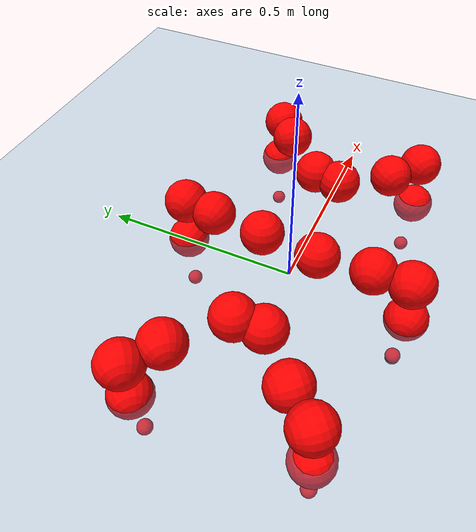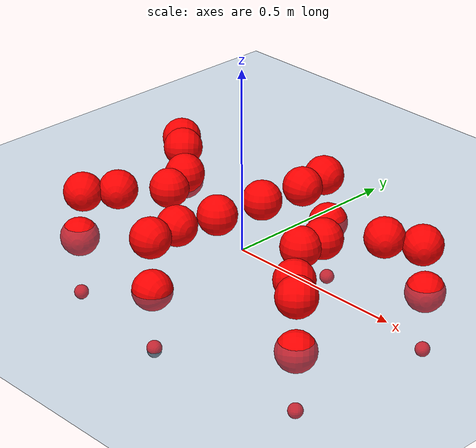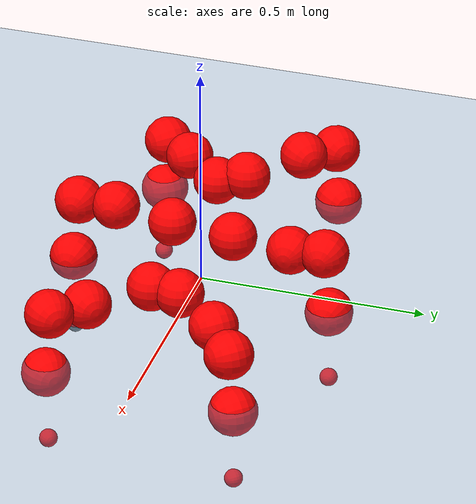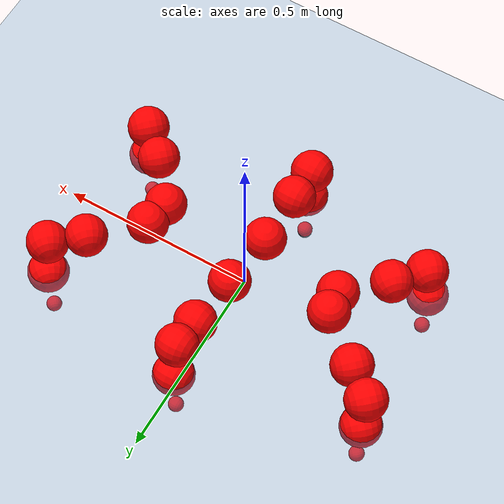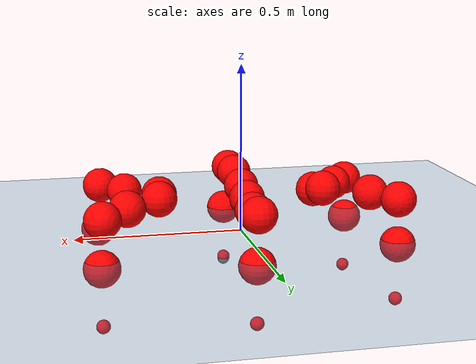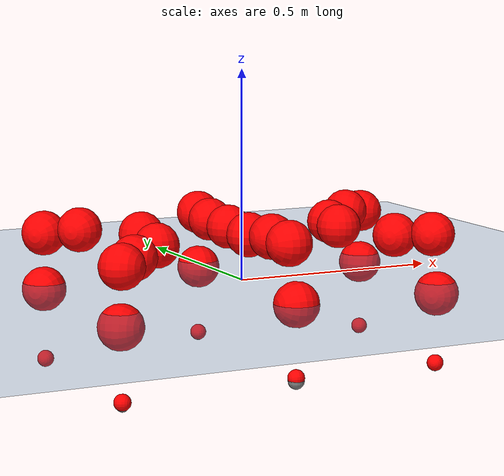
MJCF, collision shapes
<mujoco model="Golem">
  <compiler angle="radian" assetdir="assets" balanceinertia="true" inertiafromgeom="false"/>

  <option timestep="0.005" density="1.2" viscosity="2e-05"/>

  <size nkey="1"/>

  <visual>
    <quality shadowsize="8192"/>
    <map shadowclip="0.5"/>
  </visual>

  <default>
    <default class="/">
      <joint armature="0.01" damping="0.01" frictionloss="0.01"/>
      <geom contype="0" conaffinity="0" group="1" solref="-1000 -80"/>
      <site size="0.01 0.005 0.005" group="5"/>
      <general forcelimited="true" biastype="affine" gainprm="25" biasprm="0 -25 -0.5"/>
      <default class="visual">
        <geom type="mesh" group="2"/>
      </default>
      <default class="collision">
        <geom group="3"/>
      </default>
      <default class="foot">
        <geom size="0.01 0 0" condim="6" group="4" priority="1" solimp="0.015 1 0.01"/>
      </default>
      <default class="reward_collision_sphere">
        <geom group="5" rgba="1 0 0 1"/>
      </default>
    </default>
  </default>

  <asset>
    <texture type="skybox" colorspace="auto" name="//unnamed_texture_0" builtin="gradient" rgb1="0.95 0.95 0.95" rgb2="0.95 0.95 0.95" width="100" height="600"/>
    <texture type="2d" colorspace="auto" name="texplane" builtin="checker" rgb1="0.345 0.575 0.748" rgb2="0.345 0.575 0.748" markrgb="1 1 1" width="512" height="512"/>
    <material name="MatPlane" class="/" texture="texplane" texuniform="true" texrepeat="2 2" specular="0.9"/>
    <mesh name="body" class="/" file="body.stl" scale="0.001 0.001 0.001"/>
    <mesh name="coxa" class="/" file="coxa.stl" scale="0.001 0.001 0.001"/>
    <mesh name="femur" class="/" file="femur.stl" scale="0.001 0.001 0.001"/>
    <mesh name="tibia" class="/" file="tibia.stl" scale="0.001 0.001 0.001"/>
    <mesh name="tarsus" class="/" file="tarsus.stl" scale="0.001 0.001 0.001"/>
  </asset>

  <worldbody>
    <geom name="floor" class="/" size="100 100 0.125" type="plane" group="0" material="MatPlane"/>
    <light name="toplight_shadow" class="/" pos="0 0 5" dir="0.0990148 0.0990148 -0.990148" type="directional" ambient="0.04 0.04 0.04" diffuse="0.55 0.55 0.55" specular="0.12 0.12 0.12"/>
    <light name="toplight_fill" class="/" pos="0 0 5" dir="0.0990148 0.0990148 -0.990148" type="directional" castshadow="false" ambient="0.04 0.04 0.04" diffuse="0.3 0.3 0.3" specular="0.08 0.08 0.08"/>
    <body name="trunk" pos="-0.0026207 -0.000412824 0.0126516" quat="0.999994 -0.00120267 0.00048935 -0.00314872">
      <inertial pos="0.000178525 -0.0105264 0.0108739" quat="0.999533 -0.0148414 0.0209413 -0.0166039" mass="7.04836" diaginertia="0.0781505 0.00346973 0.0751987"/>
      <joint name="//unnamed_joint_0" type="free"/>
      <geom name="//unnamed_geom_1" class="/" pos="0 0 0.099959" quat="1 0 0 0" type="mesh" rgba="0.9 0.9 0.9 1" mesh="body"/>
      <site name="imu" class="/" pos="0.235539 0.00308575 0.0997869" size="0.0131424"/>
      <camera name="track" class="/" pos="0 -1.63991 0" quat="0.707107 0.707107 0 0" mode="trackcom"/>
      <camera name="ego_camera" class="/" pos="0.202918 0 0.156186" quat="-0.5 -0.5 0.5 0.5"/>
      <body name="coxa_RR" pos="-0.265521 -0.0730081 0.0939345" quat="0.381427 -0.00520882 -0.00478938 -0.924372">
        <inertial pos="0.0138338 0.00839352 -0.00102276" quat="0.998362 0.00631754 0.0226428 0.0521548" mass="0.417591" diaginertia="0.0920104 0.00363292 0.108684"/>
        <joint name="coxa_joint_RR" class="/" pos="0 0 0" axis="-0.00958286 -0.000624427 -0.999954" range="-3.00309 3.08596" armature="0.0159426" damping="0" frictionloss="0.00559037"/>
        <geom name="//unnamed_geom_2" class="/" type="mesh" rgba="0.2 0.2 0.2 1" mesh="coxa"/>
        <geom name="//unnamed_geom_3" class="reward_collision_sphere" size="0.0525696" pos="-0.0468273 0 0"/>
        <body name="femur_RR" pos="0.0870651 0.000357336 -0.0080944" quat="0.500002 -0.499998 0.499997 0.500003">
          <inertial pos="0.000493337 0.00588325 -0.0125383" quat="0.999997 0.000417319 -0.00241541 -0.000688614" mass="0.453105" diaginertia="0.0938041 0.00366583 0.108053"/>
          <joint name="femur_joint_RR" class="/" pos="0 0 0" axis="-0.0355908 0.0451872 -0.998344" stiffness="0.0175097" range="-3.22746 3.11701" armature="0.0174566" damping="0.0249029" frictionloss="0.0162391"/>
          <geom name="//unnamed_geom_4" class="/" type="mesh" rgba="0.9 0.9 0.9 1" mesh="femur"/>
          <geom name="//unnamed_geom_5" class="reward_collision_sphere" size="0.0525696"/>
          <body name="tibia_RR" pos="0.00518739 -0.0909671 0.00855223" quat="-1.21586e-05 1 -1.44137e-05 -9.09341e-05">
            <inertial pos="0.00661173 -0.011632 0.0126208" quat="0.998301 -0.0464634 0.0159851 0.0313156" mass="0.499839" diaginertia="0.115012 0.00405707 0.0976522"/>
            <joint name="tibia_joint_RR" class="/" pos="0 0 0" axis="0.000942653 0.007742 0.99997" range="-3.13202 3.33147" armature="0.0129179" damping="0" frictionloss="0.0119779"/>
            <geom name="//unnamed_geom_6" class="/" type="mesh" rgba="0.2 0.2 0.2 1" mesh="tibia"/>
            <geom name="//unnamed_geom_7" class="reward_collision_sphere" size="0.0525696"/>
            <body name="tarsus_RR" pos="0.131743 0.0120797 -0.00179193" quat="0.999982 0.00061711 0.00598674 0.000649805">
              <inertial pos="0.0886143 0.0135589 -0.00576751" quat="0.490498 0.50879 0.494454 0.506024" mass="0.47247" diaginertia="0.0909518 0.00288488 0.0838851"/>
              <joint name="tarsus_joint_RR" class="/" pos="0 0 0" axis="-0.0105294 -0.00123303 0.999944" stiffness="0.019929" range="-3.11718 3.15981" armature="0.0144671" damping="0.0548947" frictionloss="0.0146879"/>
              <geom name="//unnamed_geom_8" class="/" type="mesh" rgba="0.9 0.9 0.9 1" mesh="tarsus"/>
              <geom name="foot_1" class="foot" size="0.0142896" pos="0.174822 0 0" quat="0 -0.707107 0 0.707107"/>
              <geom name="//unnamed_geom_10" class="reward_collision_sphere" size="0.0525696"/>
              <geom name="//unnamed_geom_11" class="reward_collision_sphere" size="0.0197136" pos="0.167798 0 0"/>
              <site name="foot_1" class="foot" pos="0.174822 0 0" quat="0 -0.707107 0 0.707107" size="0.0131424"/>
            </body>
          </body>
        </body>
      </body>
      <body name="coxa_RM" pos="-0.0136506 -0.117889 0.107595" quat="0.706646 -0.000181167 -0.000877676 -0.707567">
        <inertial pos="-9.09053e-05 0.0083131 0.0145318" quat="0.999752 0.0211122 -0.00656408 0.00255523" mass="0.503659" diaginertia="0.117285 0.00477691 0.0969687"/>
        <joint name="coxa_joint_RM" class="/" pos="0 0 0" axis="-0.0105063 0.001583 -0.999944" range="-3.11666 3.1835" armature="0.0178546" damping="0" frictionloss="0.00753674"/>
        <geom name="//unnamed_geom_12" class="/" type="mesh" rgba="0.2 0.2 0.2 1" mesh="coxa"/>
        <geom name="//unnamed_geom_13" class="reward_collision_sphere" size="0.0525696" pos="-0.0468273 0 0"/>
        <body name="femur_RM" pos="0.0835889 -0.00508707 0.0147962" quat="0.495389 -0.500189 0.499084 0.505289">
          <inertial pos="0.00333404 0.00842405 0.000252712" quat="0.997864 0.0391453 -0.0483422 -0.0199282" mass="0.423676" diaginertia="0.0778811 0.0039596 0.0919417"/>
          <joint name="femur_joint_RM" class="/" pos="0 0 0" axis="0.021638 0.0123807 -0.999689" range="-2.91841 2.91655" armature="0.0036865" damping="0" frictionloss="0.0131938"/>
          <geom name="//unnamed_geom_14" class="/" type="mesh" rgba="0.9 0.9 0.9 1" mesh="femur"/>
          <geom name="//unnamed_geom_15" class="reward_collision_sphere" size="0.0525696"/>
          <body name="tibia_RM" pos="0.0016347 -0.0859547 -0.00120655" quat="0.000255389 1 -0.000452889 -0.000518256">
            <inertial pos="0.00509703 0.000224962 0.0122346" quat="0.99854 0.024734 0.00452784 -0.0478142" mass="0.596192" diaginertia="0.0981945 0.00424453 0.0897515"/>
            <joint name="tibia_joint_RM" class="/" pos="0 0 0" axis="0.0050941 -0.0124331 0.99991" range="-2.92393 3.36255" armature="0.0207663" damping="0.0452073" frictionloss="0.0165006"/>
            <geom name="//unnamed_geom_16" class="/" type="mesh" rgba="0.2 0.2 0.2 1" mesh="tibia"/>
            <geom name="//unnamed_geom_17" class="reward_collision_sphere" size="0.0525696"/>
            <body name="tarsus_RM" pos="0.137534 0.0108907 -0.0135737" quat="0.999995 0.00303156 0.00050103 8.98432e-05">
              <inertial pos="0.100145 -0.000131376 0.00643594" quat="0.496396 0.515985 0.460555 0.524632" mass="0.451386" diaginertia="0.0961814 0.00369294 0.0966817"/>
              <joint name="tarsus_joint_RM" class="/" pos="0 0 0" axis="-0.0117973 -0.0105097 0.999875" stiffness="0.0277044" range="-3.15535 2.84207" armature="0.0121718" damping="0.0725313" frictionloss="0.014992"/>
              <geom name="//unnamed_geom_18" class="/" type="mesh" rgba="0.9 0.9 0.9 1" mesh="tarsus"/>
              <geom name="foot_2" class="foot" size="0.0189467" pos="0.174822 0 0" quat="0 -0.707107 0 0.707107"/>
              <geom name="//unnamed_geom_20" class="reward_collision_sphere" size="0.0525696"/>
              <geom name="//unnamed_geom_21" class="reward_collision_sphere" size="0.0197136" pos="0.167798 0 0"/>
              <site name="foot_2" class="foot" pos="0.174822 0 0" quat="0 -0.707107 0 0.707107" size="0.0131424"/>
            </body>
          </body>
        </body>
      </body>
      <body name="coxa_RF" pos="0.277679 -0.0651929 0.104294" quat="0.924069 -0.00477523 0.00370721 -0.382178">
        <inertial pos="-0.0123723 0.0120418 0.00288013" quat="0.999854 -0.01247 -0.00869286 0.00775128" mass="0.473529" diaginertia="0.0805475 0.00381047 0.0938485"/>
        <joint name="coxa_joint_RF" class="/" pos="0 0 0" axis="-0.00399694 -0.0576993 -0.998326" stiffness="0.00915773" range="-3.12365 3.1823" armature="0.0126106" damping="0.0510711" frictionloss="0.0169533"/>
        <geom name="//unnamed_geom_22" class="/" type="mesh" rgba="0.2 0.2 0.2 1" mesh="coxa"/>
        <geom name="//unnamed_geom_23" class="reward_collision_sphere" size="0.0525696" pos="-0.0468273 0 0"/>
        <body name="femur_RF" pos="0.0962005 -0.0148783 -0.0111248" quat="0.504422 -0.494676 0.498484 0.502363">
          <inertial pos="-0.00209919 0.00104401 0.00642919" quat="0.999219 0.0264948 0.0267582 -0.0119859" mass="0.491827" diaginertia="0.0995229 0.00392565 0.101395"/>
          <joint name="femur_joint_RF" class="/" pos="0 0 0" axis="0.0185273 0.0133272 -0.99974" stiffness="0.0465023" range="-3.28103 2.98498" armature="0.0137832" damping="0" frictionloss="0.0130535"/>
          <geom name="//unnamed_geom_24" class="/" type="mesh" rgba="0.9 0.9 0.9 1" mesh="femur"/>
          <geom name="//unnamed_geom_25" class="reward_collision_sphere" size="0.0525696"/>
          <body name="tibia_RF" pos="-0.00655354 -0.0902589 0.00595498" quat="0.00112881 0.999999 0.000461046 -0.000695804">
            <inertial pos="0.00024552 0.0104961 0.000843345" quat="0.999533 0.0130219 0.0276016 -0.00134545" mass="0.492935" diaginertia="0.107634 0.00437351 0.0925313"/>
            <joint name="tibia_joint_RF" class="/" pos="0 0 0" axis="-0.00203481 0.000337798 0.999998" stiffness="0.0515784" range="-3.1542 3.35938" armature="0.0131356" damping="0.0845007" frictionloss="0.0133578"/>
            <geom name="//unnamed_geom_26" class="/" type="mesh" rgba="0.2 0.2 0.2 1" mesh="tibia"/>
            <geom name="//unnamed_geom_27" class="reward_collision_sphere" size="0.0525696"/>
            <body name="tarsus_RF" pos="0.141741 0.0121212 -0.000824381" quat="0.999989 0.00409259 0.0022587 -6.47238e-05">
              <inertial pos="0.0914008 -0.000502819 -0.00389207" quat="0.500003 0.500109 0.498335 0.501547" mass="0.467275" diaginertia="0.085135 0.00312456 0.0924064"/>
              <joint name="tarsus_joint_RF" class="/" pos="0 0 0" axis="0.00900425 -0.00969265 0.999912" range="-3.15279 3.20029" armature="0.0113462" damping="0.0187724" frictionloss="0.0144394"/>
              <geom name="//unnamed_geom_28" class="/" type="mesh" rgba="0.9 0.9 0.9 1" mesh="tarsus"/>
              <geom name="foot_3" class="foot" size="0.0130274" pos="0.174822 0 0" quat="0 -0.707107 0 0.707107"/>
              <geom name="//unnamed_geom_30" class="reward_collision_sphere" size="0.0525696"/>
              <geom name="//unnamed_geom_31" class="reward_collision_sphere" size="0.0197136" pos="0.167798 0 0"/>
              <site name="foot_3" class="foot" pos="0.174822 0 0" quat="0 -0.707107 0 0.707107" size="0.0131424"/>
            </body>
          </body>
        </body>
      </body>
      <body name="coxa_LR" pos="-0.276656 0.0580455 0.110873" quat="0.382683 7.50302e-06 7.20633e-06 0.92388">
        <inertial pos="-3.90489e-05 0.00539695 0.0100273" quat="0.998878 0.0318064 0.0348242 0.00439611" mass="0.571479" diaginertia="0.108299 0.0037723 0.111497"/>
        <joint name="coxa_joint_LR" class="/" pos="0 0 0" axis="-0.0453283 -0.0290946 -0.998548" range="-3.15511 3.18317" armature="0.00922435" damping="0.00626534" frictionloss="0.00641532"/>
        <geom name="//unnamed_geom_32" class="/" type="mesh" rgba="0.2 0.2 0.2 1" mesh="coxa"/>
        <geom name="//unnamed_geom_33" class="reward_collision_sphere" size="0.0525696" pos="-0.0468273 0 0"/>
        <body name="femur_LR" pos="0.102944 0.0133433 0.00468516" quat="0.496744 -0.499088 0.501322 0.502824">
          <inertial pos="0.000531842 0.00651881 0.0138465" quat="0.999339 -0.0194505 0.0115967 -0.0284395" mass="0.474651" diaginertia="0.106265 0.00430608 0.106271"/>
          <joint name="femur_joint_LR" class="/" pos="0 0 0" axis="-0.000474138 -0.0700046 0.997547" range="-3.11013 3.13088" armature="0.00761462" damping="0" frictionloss="0.0143571"/>
          <geom name="//unnamed_geom_34" class="/" type="mesh" rgba="0.9 0.9 0.9 1" mesh="femur"/>
          <geom name="//unnamed_geom_35" class="reward_collision_sphere" size="0.0525696"/>
          <body name="tibia_LR" pos="0.0102969 -0.0876006 0.00869457" quat="0.000205358 1 6.66012e-05 0.000427998">
            <inertial pos="0.00159912 -0.0116592 0.000210996" quat="0.999855 0.00201431 -0.0163083 0.00441189" mass="0.413439" diaginertia="0.0964229 0.003302 0.0718856"/>
            <joint name="tibia_joint_LR" class="/" pos="0 0 0" axis="-0.0637127 -0.0376596 -0.997257" stiffness="0.00361748" range="-3.35513 3.43783" armature="0.00357372" damping="0.0394065" frictionloss="0.00715015"/>
            <geom name="//unnamed_geom_36" class="/" type="mesh" rgba="0.2 0.2 0.2 1" mesh="tibia"/>
            <geom name="//unnamed_geom_37" class="reward_collision_sphere" size="0.0525696"/>
            <body name="tarsus_LR" pos="0.13427 0.0054163 0.00551556" quat="0.999998 0.00107962 -0.000646413 0.00147733">
              <inertial pos="0.0798802 0.00225662 0.0149618" quat="0.500051 0.499273 0.500731 0.499944" mass="0.448174" diaginertia="0.0817358 0.0038265 0.0900334"/>
              <joint name="tarsus_joint_LR" class="/" pos="0 0 0" axis="-0.0117271 -0.00201614 -0.999929" stiffness="0.0131008" range="-3.30604 3.29525" armature="0.0199588" damping="0" frictionloss="0.0134512"/>
              <geom name="//unnamed_geom_38" class="/" type="mesh" rgba="0.9 0.9 0.9 1" mesh="tarsus"/>
              <geom name="foot_4" class="foot" size="0.0125733" pos="0.174822 0 0" quat="0.707107 0 -0.707107 0"/>
              <geom name="//unnamed_geom_40" class="reward_collision_sphere" size="0.0525696"/>
              <geom name="//unnamed_geom_41" class="reward_collision_sphere" size="0.0197136" pos="0.167798 0 0"/>
              <site name="foot_4" class="foot" pos="0.174822 0 0" quat="0.707107 0 -0.707107 0" size="0.0131424"/>
            </body>
          </body>
        </body>
      </body>
      <body name="coxa_LM" pos="0.00108289 0.118215 0.10553" quat="0.707533 0.0017512 -2.28533e-06 0.706678">
        <inertial pos="-0.000603423 0.0123536 -0.0142334" quat="0.999408 -0.0152695 -0.019748 0.0236557" mass="0.424161" diaginertia="0.102866 0.00387798 0.0966449"/>
        <joint name="coxa_joint_LM" class="/" pos="0 0 0" axis="0.0484105 -0.0237371 -0.998545" stiffness="0.0157953" range="-3.12646 3.24303" armature="0.0225831" damping="0" frictionloss="0.0136202"/>
        <geom name="//unnamed_geom_42" class="/" type="mesh" rgba="0.2 0.2 0.2 1" mesh="coxa"/>
        <geom name="//unnamed_geom_43" class="reward_collision_sphere" size="0.0525696" pos="-0.0468273 0 0"/>
        <body name="femur_LM" pos="0.0869189 -0.0130384 -0.00198786" quat="0.499979 -0.499998 0.499944 0.500078">
          <inertial pos="0.0136411 -0.00830541 0.00862468" quat="0.999998 0.00199061 0.000377643 0.000216236" mass="0.485459" diaginertia="0.113685 0.00388138 0.102755"/>
          <joint name="femur_joint_LM" class="/" pos="0 0 0" axis="0.0115127 0.0626949 0.997966" range="-3.14188 3.11619" armature="0.0147174" damping="0.0291898" frictionloss="0.00628278"/>
          <geom name="//unnamed_geom_44" class="/" type="mesh" rgba="0.9 0.9 0.9 1" mesh="femur"/>
          <geom name="//unnamed_geom_45" class="reward_collision_sphere" size="0.0525696"/>
          <body name="tibia_LM" pos="-0.00735953 -0.0773285 -0.00270756" quat="0.000640238 0.999998 -0.0020783 -0.000334957">
            <inertial pos="-0.00318409 0.00026058 -0.00973481" quat="0.998633 -0.00221834 -0.0388031 -0.0349437" mass="0.542654" diaginertia="0.0906673 0.00383507 0.108466"/>
            <joint name="tibia_joint_LM" class="/" pos="0 0 0" axis="-0.0119698 -0.0143324 -0.999826" range="-3.16878 2.9017" armature="0.011941" damping="0.0342496" frictionloss="0.00895741"/>
            <geom name="//unnamed_geom_46" class="/" type="mesh" rgba="0.2 0.2 0.2 1" mesh="tibia"/>
            <geom name="//unnamed_geom_47" class="reward_collision_sphere" size="0.0525696"/>
            <body name="tarsus_LM" pos="0.141174 0.0120803 0.00674861" quat="1 -0.000167003 0.000475101 0.000346442">
              <inertial pos="0.0806013 0.00520938 0.00496083" quat="0.498418 0.501122 0.500588 0.499868" mass="0.450808" diaginertia="0.0891044 0.00357884 0.0821698"/>
              <joint name="tarsus_joint_LM" class="/" pos="0 0 0" axis="0.00490516 0.0115332 -0.999921" stiffness="0.0374841" range="-3.13169 3.13955" armature="0.0135406" damping="0.0492484" frictionloss="0.015814"/>
              <geom name="//unnamed_geom_48" class="/" type="mesh" rgba="0.9 0.9 0.9 1" mesh="tarsus"/>
              <geom name="foot_5" class="foot" size="0.0134015" pos="0.174822 0 0" quat="0.707107 0 -0.707107 0"/>
              <geom name="//unnamed_geom_50" class="reward_collision_sphere" size="0.0525696"/>
              <geom name="//unnamed_geom_51" class="reward_collision_sphere" size="0.0197136" pos="0.167798 0 0"/>
              <site name="foot_5" class="foot" pos="0.174822 0 0" quat="0.707107 0 -0.707107 0" size="0.0131424"/>
            </body>
          </body>
        </body>
      </body>
      <body name="coxa_LF" pos="0.287204 0.0678078 0.106452" quat="0.924199 0.000398058 0.000435153 0.38191">
        <inertial pos="-0.0100966 0.000112515 -0.00478879" quat="0.997963 -0.0573502 -0.0235652 0.0149834" mass="0.450617" diaginertia="0.0750901 0.0035116 0.0929473"/>
        <joint name="coxa_joint_LF" class="/" pos="0 0 0" axis="-0.00429737 0.0056853 -0.999975" range="-3.17816 3.37653" armature="0.0176446" damping="0.0244326" frictionloss="0.0136454"/>
        <geom name="//unnamed_geom_52" class="/" type="mesh" rgba="0.2 0.2 0.2 1" mesh="coxa"/>
        <geom name="//unnamed_geom_53" class="reward_collision_sphere" size="0.0525696" pos="-0.0468273 0 0"/>
        <body name="femur_LF" pos="0.105235 0.00234823 0.00494106" quat="0.500705 -0.500704 0.500673 0.497912">
          <inertial pos="0.0109105 -0.00968819 -0.00109107" quat="0.999561 0.000784118 0.00780102 0.0285808" mass="0.477872" diaginertia="0.104805 0.00365486 0.0910766"/>
          <joint name="femur_joint_LF" class="/" pos="0 0 0" axis="-0.0475558 0.0414394 0.998009" stiffness="0.02382" range="-2.89718 3.12768" armature="0.0129679" damping="0.0488393" frictionloss="0.0129084"/>
          <geom name="//unnamed_geom_54" class="/" type="mesh" rgba="0.9 0.9 0.9 1" mesh="femur"/>
          <geom name="//unnamed_geom_55" class="reward_collision_sphere" size="0.0525696"/>
          <body name="tibia_LF" pos="0.0131089 -0.0939118 -0.0121242" quat="-0.00282656 0.999989 -0.00315989 0.00215463">
            <inertial pos="0.0106304 6.3162e-05 0.002029" quat="0.997273 -0.032222 -0.0059125 0.0661377" mass="0.381231" diaginertia="0.103895 0.00366504 0.0995427"/>
            <joint name="tibia_joint_LF" class="/" pos="0 0 0" axis="0.0131274 -0.00280739 -0.99991" stiffness="0.00837841" range="-3.12477 3.01029" armature="0.0137156" damping="0.0573175" frictionloss="0.0147587"/>
            <geom name="//unnamed_geom_56" class="/" type="mesh" rgba="0.2 0.2 0.2 1" mesh="tibia"/>
            <geom name="//unnamed_geom_57" class="reward_collision_sphere" size="0.0525696"/>
            <body name="tarsus_LF" pos="0.134814 0.0106267 -0.0036827" quat="0.999999 0.000972403 -0.000257438 0.00018617">
              <inertial pos="0.101597 0.00329764 0.00799956" quat="0.488769 0.500932 0.496369 0.513606" mass="0.607011" diaginertia="0.107193 0.00431908 0.109091"/>
              <joint name="tarsus_joint_LF" class="/" pos="0 0 0" axis="0.0159781 0.022119 -0.999628" stiffness="0.0389061" range="-3.06127 2.99416" armature="0.0179158" damping="0" frictionloss="0.0132928"/>
              <geom name="//unnamed_geom_58" class="/" type="mesh" rgba="0.9 0.9 0.9 1" mesh="tarsus"/>
              <geom name="foot_6" class="foot" size="0.0085933" pos="0.174822 0 0" quat="0.707107 0 -0.707107 0"/>
              <geom name="//unnamed_geom_60" class="reward_collision_sphere" size="0.0525696"/>
              <geom name="//unnamed_geom_61" class="reward_collision_sphere" size="0.0197136" pos="0.167798 0 0"/>
              <site name="foot_6" class="foot" pos="0.174822 0 0" quat="0.707107 0 -0.707107 0" size="0.0131424"/>
            </body>
          </body>
        </body>
      </body>
    </body>
  </worldbody>

  <contact>
    <pair class="/" geom1="floor" geom2="foot_1" name="//unnamed_contact_0"/>
    <pair class="/" geom1="floor" geom2="foot_2" name="//unnamed_contact_1"/>
    <pair class="/" geom1="floor" geom2="foot_3" name="//unnamed_contact_2"/>
    <pair class="/" geom1="floor" geom2="foot_4" name="//unnamed_contact_3"/>
    <pair class="/" geom1="floor" geom2="foot_5" name="//unnamed_contact_4"/>
    <pair class="/" geom1="floor" geom2="foot_6" name="//unnamed_contact_5"/>
  </contact>

  <actuator>
    <general name="coxa_joint_RR" class="/" joint="coxa_joint_RR" forcerange="-9.81456 9.81456" gainprm="30.0669" biasprm="0 -30.0669 -0.611489"/>
    <general name="femur_joint_RR" class="/" joint="femur_joint_RR" forcerange="-6.52068 6.52068" gainprm="30.0669" biasprm="0 -30.0669 -0.611489"/>
    <general name="tibia_joint_RR" class="/" joint="tibia_joint_RR" forcerange="-13.7487 13.7487" gainprm="30.0669" biasprm="0 -30.0669 -0.611489"/>
    <general name="tarsus_joint_RR" class="/" joint="tarsus_joint_RR" forcerange="-7.52208 7.52208" gainprm="30.0669" biasprm="0 -30.0669 -0.611489"/>
    <general name="coxa_joint_RM" class="/" joint="coxa_joint_RM" forcerange="-4.23624 4.23624" gainprm="30.0669" biasprm="0 -30.0669 -0.611489"/>
    <general name="femur_joint_RM" class="/" joint="femur_joint_RM" forcerange="-9.71313 9.71313" gainprm="30.0669" biasprm="0 -30.0669 -0.611489"/>
    <general name="tibia_joint_RM" class="/" joint="tibia_joint_RM" forcerange="-7.43835 7.43835" gainprm="30.0669" biasprm="0 -30.0669 -0.611489"/>
    <general name="tarsus_joint_RM" class="/" joint="tarsus_joint_RM" forcerange="-13.7738 13.7738" gainprm="30.0669" biasprm="0 -30.0669 -0.611489"/>
    <general name="coxa_joint_RF" class="/" joint="coxa_joint_RF" forcerange="-5.69156 5.69156" gainprm="30.0669" biasprm="0 -30.0669 -0.611489"/>
    <general name="femur_joint_RF" class="/" joint="femur_joint_RF" forcerange="-9.83407 9.83407" gainprm="30.0669" biasprm="0 -30.0669 -0.611489"/>
    <general name="tibia_joint_RF" class="/" joint="tibia_joint_RF" forcerange="-9.40158 9.40158" gainprm="30.0669" biasprm="0 -30.0669 -0.611489"/>
    <general name="tarsus_joint_RF" class="/" joint="tarsus_joint_RF" forcerange="-9.44899 9.44899" gainprm="30.0669" biasprm="0 -30.0669 -0.611489"/>
    <general name="coxa_joint_LR" class="/" joint="coxa_joint_LR" forcerange="-5.05489 5.05489" gainprm="30.0669" biasprm="0 -30.0669 -0.611489"/>
    <general name="femur_joint_LR" class="/" joint="femur_joint_LR" forcerange="-9.66368 9.66368" gainprm="30.0669" biasprm="0 -30.0669 -0.611489"/>
    <general name="tibia_joint_LR" class="/" joint="tibia_joint_LR" forcerange="-6.05078 6.05078" gainprm="30.0669" biasprm="0 -30.0669 -0.611489"/>
    <general name="tarsus_joint_LR" class="/" joint="tarsus_joint_LR" forcerange="-4.81749 4.81749" gainprm="30.0669" biasprm="0 -30.0669 -0.611489"/>
    <general name="coxa_joint_LM" class="/" joint="coxa_joint_LM" forcerange="-13.6601 13.6601" gainprm="30.0669" biasprm="0 -30.0669 -0.611489"/>
    <general name="femur_joint_LM" class="/" joint="femur_joint_LM" forcerange="-7.91304 7.91304" gainprm="30.0669" biasprm="0 -30.0669 -0.611489"/>
    <general name="tibia_joint_LM" class="/" joint="tibia_joint_LM" forcerange="-5.2009 5.2009" gainprm="30.0669" biasprm="0 -30.0669 -0.611489"/>
    <general name="tarsus_joint_LM" class="/" joint="tarsus_joint_LM" forcerange="-4.36484 4.36484" gainprm="30.0669" biasprm="0 -30.0669 -0.611489"/>
    <general name="coxa_joint_LF" class="/" joint="coxa_joint_LF" forcerange="-13.0526 13.0526" gainprm="30.0669" biasprm="0 -30.0669 -0.611489"/>
    <general name="femur_joint_LF" class="/" joint="femur_joint_LF" forcerange="-12.9502 12.9502" gainprm="30.0669" biasprm="0 -30.0669 -0.611489"/>
    <general name="tibia_joint_LF" class="/" joint="tibia_joint_LF" forcerange="-11.342 11.342" gainprm="30.0669" biasprm="0 -30.0669 -0.611489"/>
    <general name="tarsus_joint_LF" class="/" joint="tarsus_joint_LF" forcerange="-12.0217 12.0217" gainprm="30.0669" biasprm="0 -30.0669 -0.611489"/>
  </actuator>

  <sensor>
    <gyro site="imu" name="imu_angular_velocity"/>
    <velocimeter site="imu" name="imu_linear_velocity"/>
    <framelinvel objtype="site" objname="foot_1" name="foot_1_global_linear_velocity"/>
    <framelinvel objtype="site" objname="foot_2" name="foot_2_global_linear_velocity"/>
    <framelinvel objtype="site" objname="foot_3" name="foot_3_global_linear_velocity"/>
    <framelinvel objtype="site" objname="foot_4" name="foot_4_global_linear_velocity"/>
    <framelinvel objtype="site" objname="foot_5" name="foot_5_global_linear_velocity"/>
    <framelinvel objtype="site" objname="foot_6" name="foot_6_global_linear_velocity"/>
  </sensor>

  <keyframe>
    <key name="home" qpos="0 0 0.1457 1 0 0 0 0 0 0 0 0 0 0 0 0 0 0 0 0 0 0 0 0 0 0 0 0 0 0 0"/>
  </keyframe>
</mujoco>
